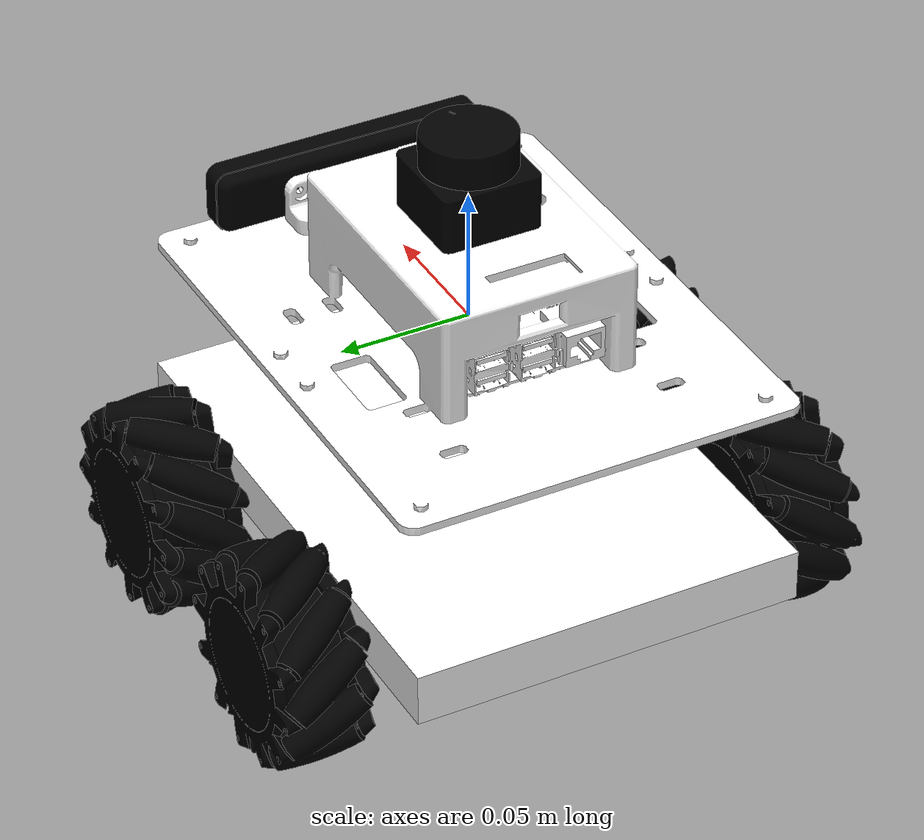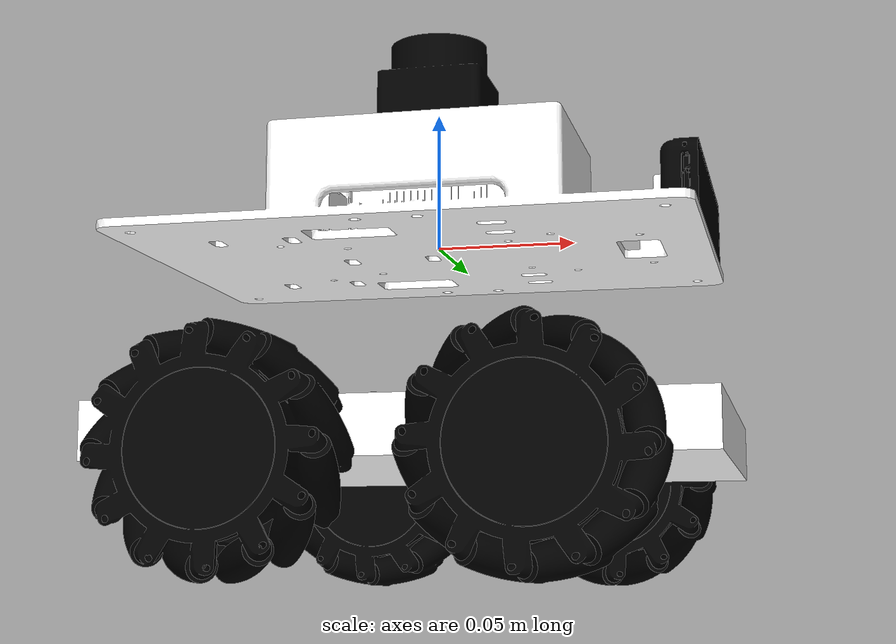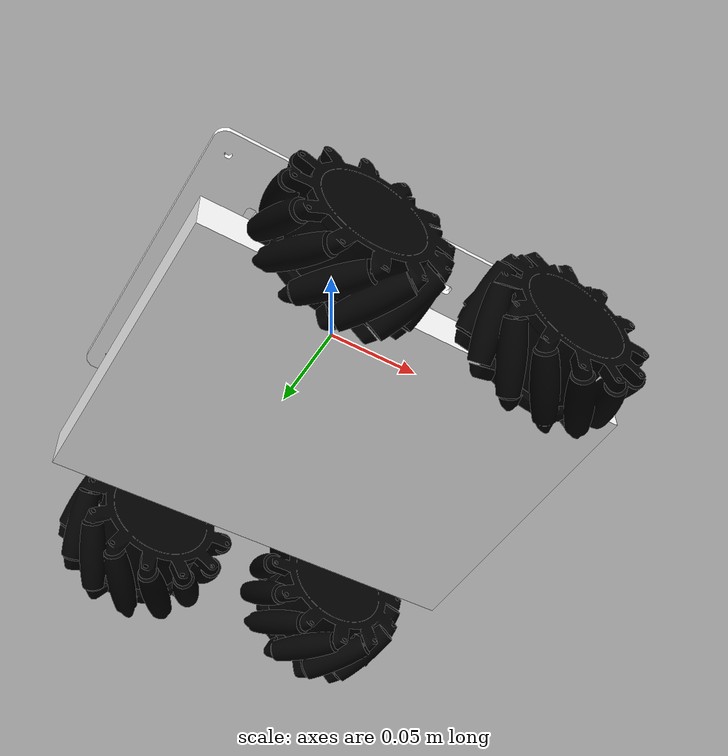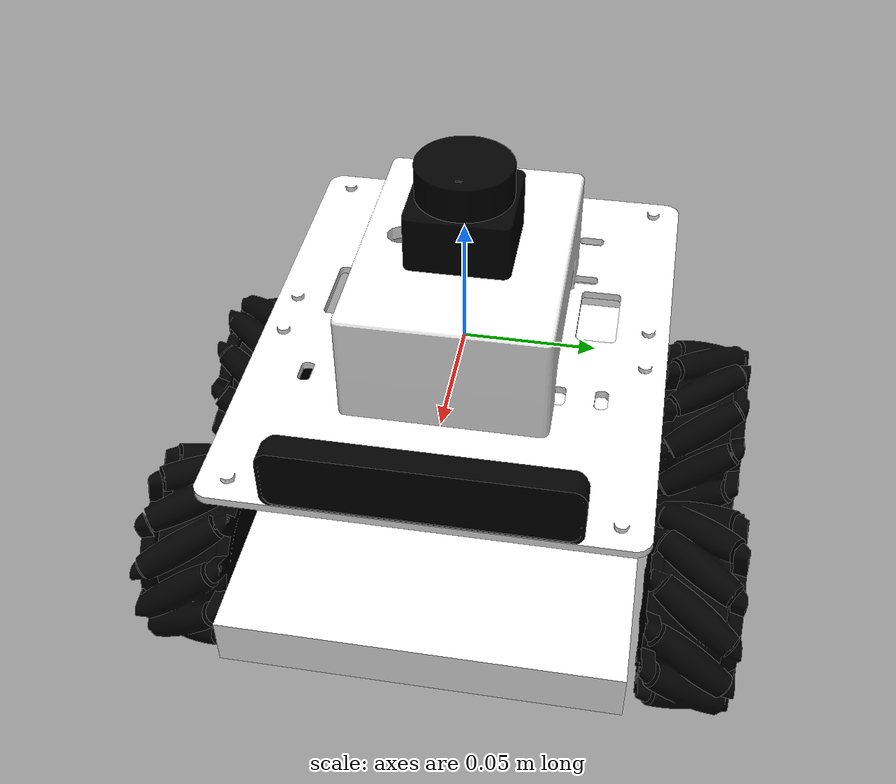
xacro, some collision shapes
<?xml version="1.0"?>

<robot name="akros" xmlns:xacro="http://ros.org/wiki/xacro">

<!-- **** LINKS **** -->

<!-- NAVIGATION MODULE (BASE_LINK) -->
<link name="base_link">
  <visual>
    <origin xyz="0 0 0" rpy="0 0 0" />
    <geometry>
      <mesh filename="package://akros_description/meshes/navigation_module_centered.stl" />
    </geometry>
    <material name="">
      <color rgba="1 1 1 1" />
    </material>
  </visual>
  <collision>
    <origin xyz="0 0 0" rpy="0 0 0" />
    <geometry>
      <box size='0.21 0.15 0.02'/>
    </geometry>
  </collision>
</link>

<!-- BASE_LINK_INERTIAL (WORKAROUND FOR KDL WHICH DOES NOT ACCEPT BASE_LINK WITH INERTIA) -->
<link name="base_link_inertial">
  <inertial>
    <origin xyz="0 0 0" rpy="0 0 0" />
    <mass value="0.001" />
    <inertia ixx="0.01" ixy="0.01" ixz="0.01" iyy="0.01" iyz="0.01" izz="0.01" />
  </inertial>
</link>

<!-- LD06 LASER_LINK -->
<link name="laser_link">
  <inertial>
    <origin xyz="0 0 0" rpy="0 0 0" />
    <mass value="0.001" />
    <inertia ixx="0.01" ixy="0.01" ixz="0.01" iyy="0.01" iyz="0.01" izz="0.01" />
  </inertial>
  <visual>
    <origin xyz="0 0 0" rpy="0 0 0" />
    <geometry>
      <mesh filename="package://akros_description/meshes/ld06.stl" />
    </geometry>
    <material name="">
      <color rgba="0 0 0 1" />
    </material>
  </visual>
  <collision>
    <origin xyz="0 0 0" rpy="0 0 0" />
    <geometry>
      <mesh filename="package://akros_description/meshes/ld06.stl" />
    </geometry>
  </collision>
</link>

<!-- LASER_FRAME -->
<link name="laser_frame"/>

<!-- T265 TRACKING CAMERA (T265_POSE_FRAME AS WORKAROUND TO KEEP TREE CONTINUOUS)-->
<link name="t265_pose_frame">
  <inertial>
    <origin xyz="0 0 0" rpy="0 0 0" />
    <mass value="0.1" />
    <inertia ixx="0.01" ixy="0.01" ixz="0.01" iyy="0.01" iyz="0.01" izz="0.01" />
  </inertial>
  <visual>
    <origin xyz="0 0 0" rpy="0 0 0" />
    <geometry>
      <mesh filename="package://akros_description/meshes/t265.stl" />
    </geometry>
    <material name="">
      <color rgba="0 0 0 1" />
    </material>
  </visual>
  <collision>
    <origin xyz="0 0 0" rpy="0 0 0" />
    <geometry>
      <box size='0.01 0.01 0.01'/>
    </geometry>
  </collision>
</link>

<!-- BASE MODULE (BASE_FOOTPRINT) -->
<link name="base_footprint">
  <inertial>
    <mass value="1.0"/>
    <inertia ixx="0.015" iyy="0.0375" izz="0.0375" ixy="0" ixz="0" iyz="0"/>
  </inertial>
  <visual>
    <origin xyz="0 0 0" rpy="0 0 0" />
    <geometry>
      <mesh filename="package://akros_description/meshes/base_module_centered.stl" />
    </geometry>
    <material name="">
      <color rgba="1 1 1 1" />
    </material>
  </visual>
  <collision>
    <origin xyz="0 0 0.0278" rpy="0 0 0" />
    <geometry>
      <box size='0.21 0.15 0.02'/>
    </geometry>
  </collision>
</link>

<!-- WHEEL LEFT FRONT -->
<link name="wheel_lf">
  <inertial>
    <mass value="0.1"/>
    <inertia ixx="5.1458e-5" iyy="5.1458e-5" izz="6.125e-5" ixy="0" ixz="0" iyz="0"/>
  </inertial>
  <visual>
    <origin xyz="0 0 0" rpy="0 0 0" />
    <geometry>
      <mesh filename="package://akros_description/meshes/wheel_left_front.stl" />
    </geometry>
    <material name="">
      <color rgba="0 0 0 1" />
    </material>
  </visual>
  <collision>
    <origin xyz="0 0 0" rpy="1.57075 0 0" />
    <geometry>
      <cylinder length="0.02" radius="0.04"/>
    </geometry>
  </collision>
</link>

<!-- WHEEL LEFT BACK -->
<link name="wheel_lb">
  <inertial>
    <mass value="0.1"/>
    <inertia ixx="5.1458e-5" iyy="5.1458e-5" izz="6.125e-5" ixy="0" ixz="0" iyz="0"/>
  </inertial>
  <visual>
    <origin xyz="0 0 0" rpy="0 0 0" />
    <geometry>
      <mesh filename="package://akros_description/meshes/wheel_left_back.stl" />
    </geometry>
    <material name="">
      <color rgba="0 0 0 1" />
    </material>
  </visual>
  <collision>
    <origin xyz="0 0 0" rpy="1.57075 0 0" />
    <geometry>
      <cylinder length="0.02" radius="0.04"/>
    </geometry>
  </collision>
</link>

<!-- WHEEL RIGHT FRONT -->
<link name="wheel_rf">
  <inertial>
    <mass value="0.1"/>
    <inertia ixx="5.1458e-5" iyy="5.1458e-5" izz="6.125e-5" ixy="0" ixz="0" iyz="0"/>
  </inertial>
  <visual>
    <origin xyz="0 0 0" rpy="0 0 0" />
    <geometry>
      <mesh filename="package://akros_description/meshes/wheel_right_front.stl" />
    </geometry>
    <material name="">
      <color rgba="0 0 0 1" />
    </material>
  </visual>
  <collision>
    <origin xyz="0 0 0" rpy="1.57075 0 0" />
    <geometry>
      <cylinder length="0.02" radius="0.04"/>
    </geometry>
  </collision>
</link>

<!-- WHEEL RIGHT BACK -->
<link name="wheel_rb">
  <inertial>
    <mass value="0.1"/>
    <inertia ixx="5.1458e-5" iyy="5.1458e-5" izz="6.125e-5" ixy="0" ixz="0" iyz="0"/>
  </inertial>
  <visual>
    <origin xyz="0 0 0" rpy="0 0 0" />
    <geometry>
      <mesh filename="package://akros_description/meshes/wheel_right_back.stl" />
    </geometry>
    <material name="">
      <color rgba="0 0 0 1" />
    </material>
  </visual>
  <collision>
    <origin xyz="0 0 0" rpy="1.57075 0 0" />
    <geometry>
      <cylinder length="0.02" radius="0.04"/>
    </geometry>
  </collision>
</link>

<!-- **** JOINTS **** -->

<!-- BASE_LINK_INERTIAL TO BASE_LINK -->
<joint name="base_inertial_fixed" type="fixed">
  <parent link="base_link"/>
  <child link="base_link_inertial"/>
  <origin xyz="0 0 0"/>
</joint>

<!-- LASER_LINK TO BASE_LINK -->
<joint name="base_lidar_fixed" type="fixed">
  <parent link="base_link"/>
  <child link="laser_link"/>
  <origin xyz="0 0 0.0415"/>
</joint>

<!-- LASER_FRAME TO LASER_LINK -->
<joint name="laser_frame_fixed" type="fixed">
  <parent link="laser_link"/>
  <child link="laser_frame"/>
  <origin xyz="0 0 0.03"/>
</joint>

<!-- T265_POSE_FRAME TO BASE_LINK -->
<joint name="base_t265_fixed" type="fixed">
  <parent link="base_link" />
  <child link="t265_pose_frame" />
  <origin xyz="0.092 0 0.011" rpy="0 0 0" />
</joint>

<!-- BASE_FOOTPRINT TO BASE_LINK -->
<joint name="base_link_footprint_fixed" type="fixed">
  <parent link="base_link"/>
  <child link="base_footprint"/>
  <origin xyz="0 0 -0.099" rpy="0 0 0"/>
  <axis xyz="0 0 0"/>
</joint>

<!-- WHEEL_LF TO BASE_FOOTPRINT -->
<joint name="joint_lf" type="continuous">
  <origin xyz="0.051 0.0973 0.0178" rpy="0 0 0" />
  <parent link="base_footprint" />
  <child link="wheel_lf" />
  <axis xyz="0 1 0" />
</joint>
<transmission name="wheel_lf_trans">
  <type>transmission_interface/SimpleTransmission</type>
  <joint name="joint_lf">
    <hardwareInterface>VelocityJointInterface</hardwareInterface>
  </joint>
  <actuator name="motor_lf">
    <hardwareInterface>VelocityJointInterface</hardwareInterface>
    <mechanicalReduction>1</mechanicalReduction>
  </actuator>
</transmission>

<!-- WHEEL_LB TO BASE_FOOTPRINT -->
<joint name="joint_lb" type="continuous">
  <origin xyz="-0.0475 0.09731 0.0178" rpy="0 0 0" />
  <parent link="base_footprint" />
  <child link="wheel_lb" />
  <axis xyz="0 1 0" />
</joint>
<transmission name="wheel_lb_trans">
  <type>transmission_interface/SimpleTransmission</type>
  <joint name="joint_lb">
    <hardwareInterface>VelocityJointInterface</hardwareInterface>
  </joint>
  <actuator name="motor_lb">
    <hardwareInterface>VelocityJointInterface</hardwareInterface>
    <mechanicalReduction>1</mechanicalReduction>
  </actuator>
</transmission>

<!-- WHEEL_RF TO BASE_FOOTPRINT -->
<joint name="joint_rf" type="continuous">
  <origin xyz="0.051 -0.0973 0.0178" rpy="0 0 0" />
  <parent link="base_footprint" />
  <child link="wheel_rf" />
  <axis xyz="0 1 0" />
</joint>
<transmission name="wheel_rf_trans">
  <type>transmission_interface/SimpleTransmission</type>
  <joint name="joint_rf">
    <hardwareInterface>VelocityJointInterface</hardwareInterface>
  </joint>
  <actuator name="motor_rf">
    <hardwareInterface>VelocityJointInterface</hardwareInterface>
    <mechanicalReduction>1</mechanicalReduction>
  </actuator>
</transmission>

<!-- WHEEL_RB TO BASE_FOOTPRINT -->
<joint name="joint_rb" type="continuous">
  <origin xyz="-0.0475 -0.0973 0.0178" rpy="0 0 0" />
  <parent link="base_footprint" />
  <child link="wheel_rb" />
  <axis xyz="0 1 0" />
</joint>
<transmission name="wheel_rb_trans">
  <type>transmission_interface/SimpleTransmission</type>
  <joint name="joint_rb">
    <hardwareInterface>VelocityJointInterface</hardwareInterface>
  </joint>
  <actuator name="motor_rb">
    <hardwareInterface>VelocityJointInterface</hardwareInterface>
    <mechanicalReduction>1</mechanicalReduction>
  </actuator>
</transmission>

<!-- **** GAZEBO **** -->

<gazebo reference="base_link">
  <material>Gazebo/White</material>
</gazebo>

<gazebo reference="laser_link">
  <material>Gazebo/Black</material>
</gazebo>

<gazebo reference="t265_pose_frame">
  <material>Gazebo/Black</material>
</gazebo>

<gazebo reference="base_footprint">
  <material>Gazebo/White</material>
</gazebo>

<gazebo reference="wheel_lf">
  <material>Gazebo/Black</material>
</gazebo>

<gazebo reference="wheel_lb">
  <material>Gazebo/Black</material>
</gazebo>

<gazebo reference="wheel_rf">
  <material>Gazebo/Black</material>
</gazebo>

<gazebo reference="wheel_rb">
  <material>Gazebo/Black</material>
</gazebo>

<gazebo reference="laser">
  <sensor type="ray" name="head_ld06_sensor">
    <pose>0 0 0.06 0 0 0</pose>
    <visualize>false</visualize>
    <update_rate>40</update_rate>
    <ray>
      <scan>
        <horizontal>
          <samples>720</samples>
          <resolution>1</resolution>
          <min_angle>-3.14159265</min_angle>
          <max_angle>3.14159265</max_angle>
        </horizontal>
      </scan>
      <range>
        <min>0.2</min>
        <max>30.0</max>
        <resolution>0.01</resolution>
      </range>
      <noise>
        <type>gaussian</type>
        <mean>0.0</mean>
        <stddev>0.01</stddev>
      </noise>
    </ray>
    <plugin name="gazebo_ros_head_ld06_controller" filename="libgazebo_ros_laser.so">
      <topicName>scan</topicName>
      <frameName>laser_frame</frameName>
    </plugin>
  </sensor>
</gazebo>

<gazebo>
  <plugin name="omni_steering" filename="libgazebo_ros_planar_move.so">
    <commandTopic>cmd_vel</commandTopic>
    <odometryTopic>odom</odometryTopic>
    <odometryFrame>odom</odometryFrame>
    <odometryRate>100.0</odometryRate>
    <robotBaseFrame>base_link</robotBaseFrame>
    <publishTF>false</publishTF>
  </plugin>
</gazebo>

</robot>
